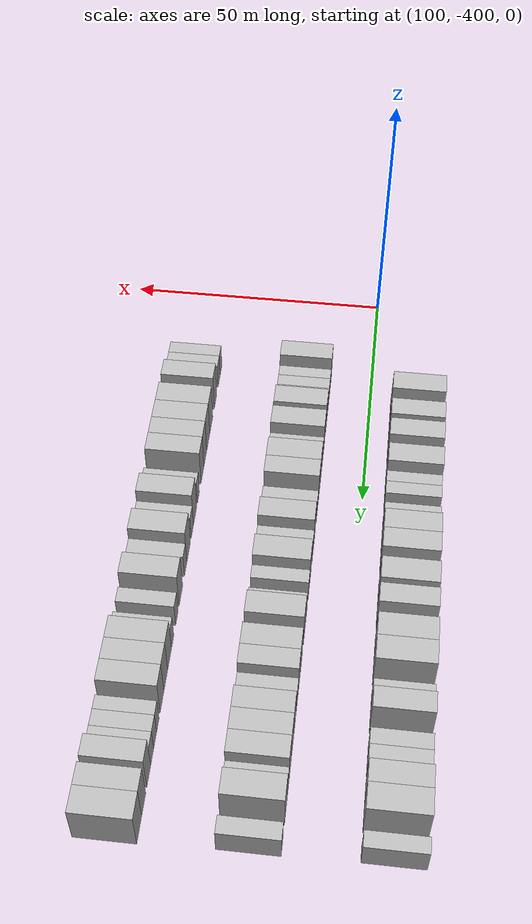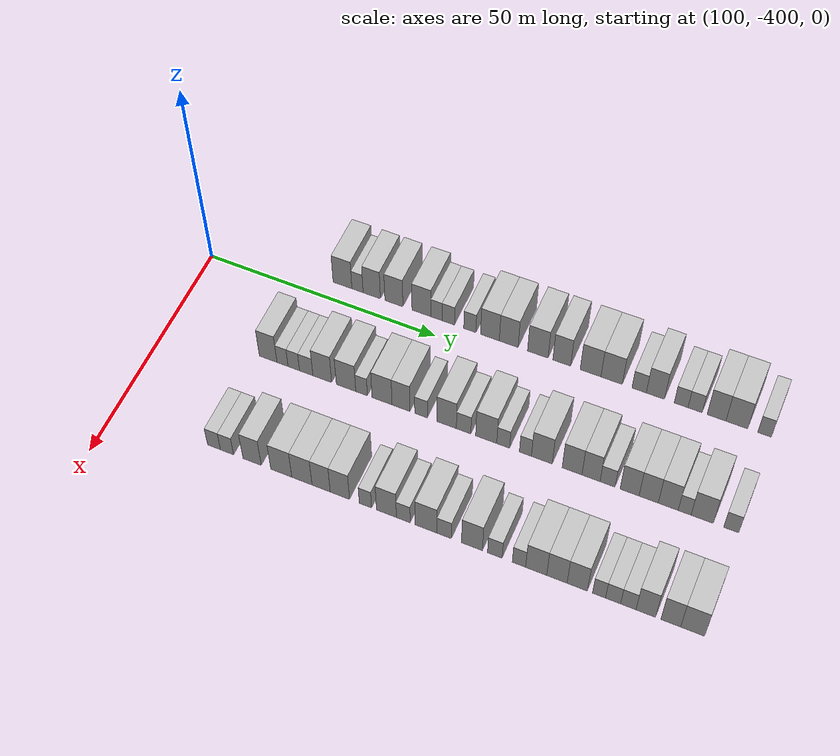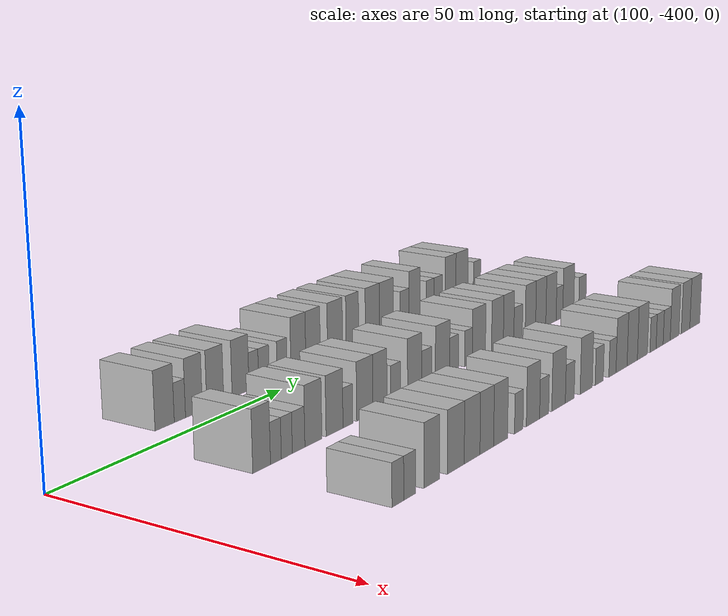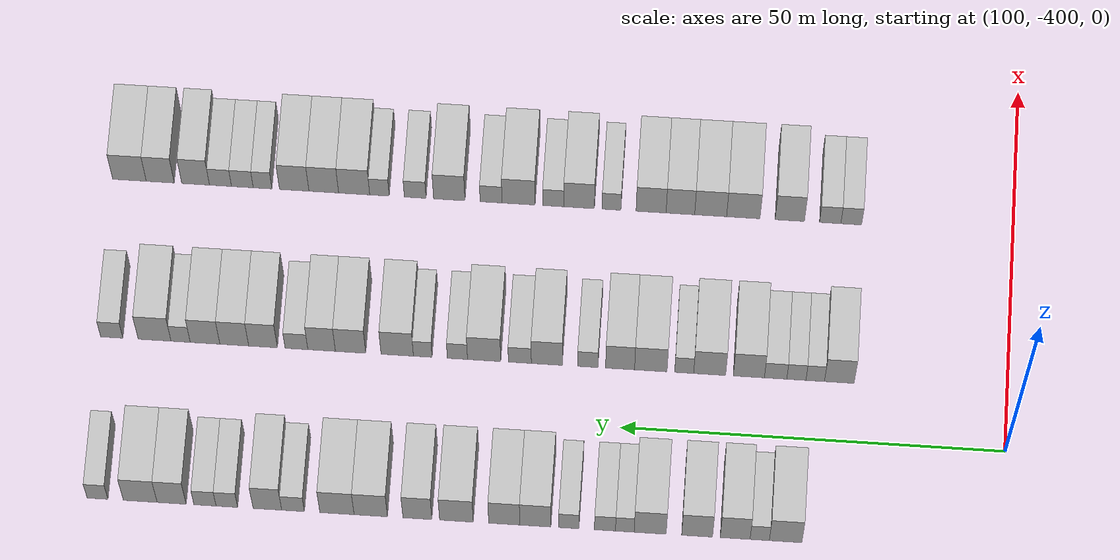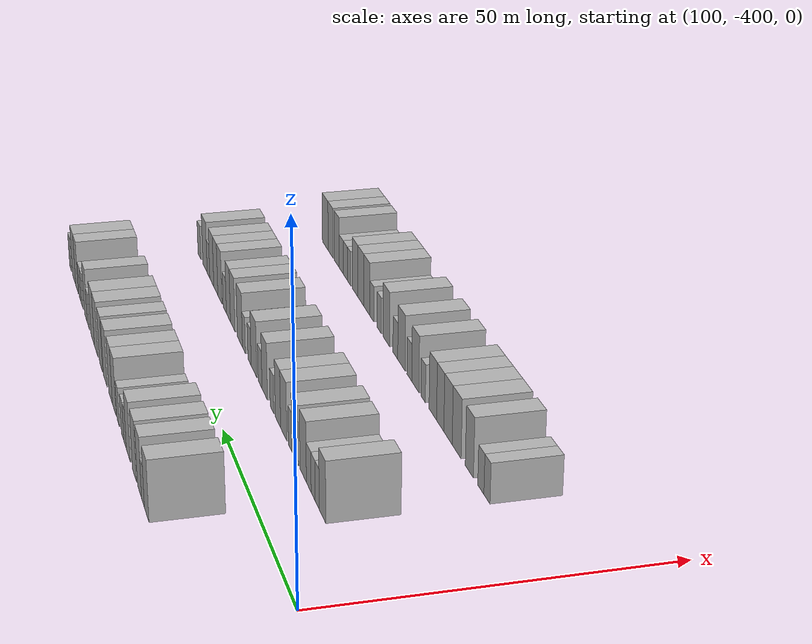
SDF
<sdf version="1.6">
 <world name="default">
  <model name="building_569">
   <static>1</static>
   <pose>91.0000 -372.1632 0 0.000000 0.000000 0.000000</pose>
   <link name="link">
    <pose>0 0 4.50 0 0 0</pose>
    <collision name="collision"><geometry><box><size>10.0000 4.1927 9.0000</size></box></geometry></collision>
    <visual name="visual">
     <cast_shadows>0</cast_shadows>
     <geometry><box><size>10.0000 4.1927 9.0000</size></box></geometry>
     <material>
      <script>
       <uri>model://HANNAS_wall/materials/scripts</uri>
       <uri>model://HANNAS_wall/materials/textures</uri>
       <name>vrc/HANNAS_wall</name>
      </script>
     </material>
    </visual>
   </link>
  </model>
  <model name="building_570">
   <static>1</static>
   <pose>91.0000 -368.8224 0 0.000000 0.000000 0.000000</pose>
   <link name="link">
    <pose>0 0 3.00 0 0 0</pose>
    <collision name="collision"><geometry><box><size>10.0000 2.4889 6.0000</size></box></geometry></collision>
    <visual name="visual">
     <cast_shadows>0</cast_shadows>
     <geometry><box><size>10.0000 2.4889 6.0000</size></box></geometry>
     <material>
      <script>
       <uri>model://HANNAS_wall/materials/scripts</uri>
       <uri>model://HANNAS_wall/materials/textures</uri>
       <name>vrc/HANNAS_wall</name>
      </script>
     </material>
    </visual>
   </link>
  </model>
  <model name="building_571">
   <static>1</static>
   <pose>91.0000 -365.6552 0 0.000000 0.000000 0.000000</pose>
   <link name="link">
    <pose>0 0 4.50 0 0 0</pose>
    <collision name="collision"><geometry><box><size>10.0000 3.8455 9.0000</size></box></geometry></collision>
    <visual name="visual">
     <cast_shadows>0</cast_shadows>
     <geometry><box><size>10.0000 3.8455 9.0000</size></box></geometry>
     <material>
      <script>
       <uri>model://HANNAS_wall/materials/scripts</uri>
       <uri>model://HANNAS_wall/materials/textures</uri>
       <name>vrc/HANNAS_wall</name>
      </script>
     </material>
    </visual>
   </link>
  </model>
  <model name="building_572">
   <static>1</static>
   <pose>91.0000 -360.7423 0 0.000000 0.000000 0.000000</pose>
   <link name="link">
    <pose>0 0 4.50 0 0 0</pose>
    <collision name="collision"><geometry><box><size>10.0000 3.9803 9.0000</size></box></geometry></collision>
    <visual name="visual">
     <cast_shadows>0</cast_shadows>
     <geometry><box><size>10.0000 3.9803 9.0000</size></box></geometry>
     <material>
      <script>
       <uri>model://HANNAS_wall/materials/scripts</uri>
       <uri>model://HANNAS_wall/materials/textures</uri>
       <name>vrc/HANNAS_wall</name>
      </script>
     </material>
    </visual>
   </link>
  </model>
  <model name="building_573">
   <static>1</static>
   <pose>91.0000 -354.6843 0 0.000000 0.000000 0.000000</pose>
   <link name="link">
    <pose>0 0 4.50 0 0 0</pose>
    <collision name="collision"><geometry><box><size>10.0000 4.1358 9.0000</size></box></geometry></collision>
    <visual name="visual">
     <cast_shadows>0</cast_shadows>
     <geometry><box><size>10.0000 4.1358 9.0000</size></box></geometry>
     <material>
      <script>
       <uri>model://HANNAS_wall/materials/scripts</uri>
       <uri>model://HANNAS_wall/materials/textures</uri>
       <name>vrc/HANNAS_wall</name>
      </script>
     </material>
    </visual>
   </link>
  </model>
  <model name="building_574">
   <static>1</static>
   <pose>91.0000 -351.4107 0 0.000000 0.000000 0.000000</pose>
   <link name="link">
    <pose>0 0 3.00 0 0 0</pose>
    <collision name="collision"><geometry><box><size>10.0000 2.4114 6.0000</size></box></geometry></collision>
    <visual name="visual">
     <cast_shadows>0</cast_shadows>
     <geometry><box><size>10.0000 2.4114 6.0000</size></box></geometry>
     <material>
      <script>
       <uri>model://HANNAS_wall/materials/scripts</uri>
       <uri>model://HANNAS_wall/materials/textures</uri>
       <name>vrc/HANNAS_wall</name>
      </script>
     </material>
    </visual>
   </link>
  </model>
  <model name="building_575">
   <static>1</static>
   <pose>91.0000 -348.8456 0 0.000000 0.000000 0.000000</pose>
   <link name="link">
    <pose>0 0 3.00 0 0 0</pose>
    <collision name="collision"><geometry><box><size>10.0000 2.7187 6.0000</size></box></geometry></collision>
    <visual name="visual">
     <cast_shadows>0</cast_shadows>
     <geometry><box><size>10.0000 2.7187 6.0000</size></box></geometry>
     <material>
      <script>
       <uri>model://HANNAS_wall/materials/scripts</uri>
       <uri>model://HANNAS_wall/materials/textures</uri>
       <name>vrc/HANNAS_wall</name>
      </script>
     </material>
    </visual>
   </link>
  </model>
  <model name="building_576">
   <static>1</static>
   <pose>91.0000 -344.1734 0 0.000000 0.000000 0.000000</pose>
   <link name="link">
    <pose>0 0 3.00 0 0 0</pose>
    <collision name="collision"><geometry><box><size>10.0000 2.6256 6.0000</size></box></geometry></collision>
    <visual name="visual">
     <cast_shadows>0</cast_shadows>
     <geometry><box><size>10.0000 2.6256 6.0000</size></box></geometry>
     <material>
      <script>
       <uri>model://HANNAS_wall/materials/scripts</uri>
       <uri>model://HANNAS_wall/materials/textures</uri>
       <name>vrc/HANNAS_wall</name>
      </script>
     </material>
    </visual>
   </link>
  </model>
  <model name="building_577">
   <static>1</static>
   <pose>91.0000 -339.8526 0 0.000000 0.000000 0.000000</pose>
   <link name="link">
    <pose>0 0 4.50 0 0 0</pose>
    <collision name="collision"><geometry><box><size>10.0000 4.0161 9.0000</size></box></geometry></collision>
    <visual name="visual">
     <cast_shadows>0</cast_shadows>
     <geometry><box><size>10.0000 4.0161 9.0000</size></box></geometry>
     <material>
      <script>
       <uri>model://HANNAS_wall/materials/scripts</uri>
       <uri>model://HANNAS_wall/materials/textures</uri>
       <name>vrc/HANNAS_wall</name>
      </script>
     </material>
    </visual>
   </link>
  </model>
  <model name="building_578">
   <static>1</static>
   <pose>91.0000 -335.8316 0 0.000000 0.000000 0.000000</pose>
   <link name="link">
    <pose>0 0 4.50 0 0 0</pose>
    <collision name="collision"><geometry><box><size>10.0000 4.0258 9.0000</size></box></geometry></collision>
    <visual name="visual">
     <cast_shadows>0</cast_shadows>
     <geometry><box><size>10.0000 4.0258 9.0000</size></box></geometry>
     <material>
      <script>
       <uri>model://HANNAS_wall/materials/scripts</uri>
       <uri>model://HANNAS_wall/materials/textures</uri>
       <name>vrc/HANNAS_wall</name>
      </script>
     </material>
    </visual>
   </link>
  </model>
  <model name="building_579">
   <static>1</static>
   <pose>91.0000 -329.6437 0 0.000000 0.000000 0.000000</pose>
   <link name="link">
    <pose>0 0 4.50 0 0 0</pose>
    <collision name="collision"><geometry><box><size>10.0000 4.3502 9.0000</size></box></geometry></collision>
    <visual name="visual">
     <cast_shadows>0</cast_shadows>
     <geometry><box><size>10.0000 4.3502 9.0000</size></box></geometry>
     <material>
      <script>
       <uri>model://HANNAS_wall/materials/scripts</uri>
       <uri>model://HANNAS_wall/materials/textures</uri>
       <name>vrc/HANNAS_wall</name>
      </script>
     </material>
    </visual>
   </link>
  </model>
  <model name="building_580">
   <static>1</static>
   <pose>91.0000 -324.5952 0 0.000000 0.000000 0.000000</pose>
   <link name="link">
    <pose>0 0 4.50 0 0 0</pose>
    <collision name="collision"><geometry><box><size>10.0000 3.7467 9.0000</size></box></geometry></collision>
    <visual name="visual">
     <cast_shadows>0</cast_shadows>
     <geometry><box><size>10.0000 3.7467 9.0000</size></box></geometry>
     <material>
      <script>
       <uri>model://HANNAS_wall/materials/scripts</uri>
       <uri>model://HANNAS_wall/materials/textures</uri>
       <name>vrc/HANNAS_wall</name>
      </script>
     </material>
    </visual>
   </link>
  </model>
  <model name="building_581">
   <static>1</static>
   <pose>91.0000 -318.5588 0 0.000000 0.000000 0.000000</pose>
   <link name="link">
    <pose>0 0 4.50 0 0 0</pose>
    <collision name="collision"><geometry><box><size>10.0000 4.3262 9.0000</size></box></geometry></collision>
    <visual name="visual">
     <cast_shadows>0</cast_shadows>
     <geometry><box><size>10.0000 4.3262 9.0000</size></box></geometry>
     <material>
      <script>
       <uri>model://HANNAS_wall/materials/scripts</uri>
       <uri>model://HANNAS_wall/materials/textures</uri>
       <name>vrc/HANNAS_wall</name>
      </script>
     </material>
    </visual>
   </link>
  </model>
  <model name="building_582">
   <static>1</static>
   <pose>91.0000 -314.1815 0 0.000000 0.000000 0.000000</pose>
   <link name="link">
    <pose>0 0 4.50 0 0 0</pose>
    <collision name="collision"><geometry><box><size>10.0000 4.4285 9.0000</size></box></geometry></collision>
    <visual name="visual">
     <cast_shadows>0</cast_shadows>
     <geometry><box><size>10.0000 4.4285 9.0000</size></box></geometry>
     <material>
      <script>
       <uri>model://HANNAS_wall/materials/scripts</uri>
       <uri>model://HANNAS_wall/materials/textures</uri>
       <name>vrc/HANNAS_wall</name>
      </script>
     </material>
    </visual>
   </link>
  </model>
  <model name="building_583">
   <static>1</static>
   <pose>91.0000 -308.4955 0 0.000000 0.000000 0.000000</pose>
   <link name="link">
    <pose>0 0 3.00 0 0 0</pose>
    <collision name="collision"><geometry><box><size>10.0000 2.9434 6.0000</size></box></geometry></collision>
    <visual name="visual">
     <cast_shadows>0</cast_shadows>
     <geometry><box><size>10.0000 2.9434 6.0000</size></box></geometry>
     <material>
      <script>
       <uri>model://HANNAS_wall/materials/scripts</uri>
       <uri>model://HANNAS_wall/materials/textures</uri>
       <name>vrc/HANNAS_wall</name>
      </script>
     </material>
    </visual>
   </link>
  </model>
  <model name="building_584">
   <static>1</static>
   <pose>91.0000 -305.1701 0 0.000000 0.000000 0.000000</pose>
   <link name="link">
    <pose>0 0 4.50 0 0 0</pose>
    <collision name="collision"><geometry><box><size>10.0000 3.7074 9.0000</size></box></geometry></collision>
    <visual name="visual">
     <cast_shadows>0</cast_shadows>
     <geometry><box><size>10.0000 3.7074 9.0000</size></box></geometry>
     <material>
      <script>
       <uri>model://HANNAS_wall/materials/scripts</uri>
       <uri>model://HANNAS_wall/materials/textures</uri>
       <name>vrc/HANNAS_wall</name>
      </script>
     </material>
    </visual>
   </link>
  </model>
  <model name="building_585">
   <static>1</static>
   <pose>91.0000 -299.9172 0 0.000000 0.000000 0.000000</pose>
   <link name="link">
    <pose>0 0 3.00 0 0 0</pose>
    <collision name="collision"><geometry><box><size>10.0000 2.7984 6.0000</size></box></geometry></collision>
    <visual name="visual">
     <cast_shadows>0</cast_shadows>
     <geometry><box><size>10.0000 2.7984 6.0000</size></box></geometry>
     <material>
      <script>
       <uri>model://HANNAS_wall/materials/scripts</uri>
       <uri>model://HANNAS_wall/materials/textures</uri>
       <name>vrc/HANNAS_wall</name>
      </script>
     </material>
    </visual>
   </link>
  </model>
  <model name="building_586">
   <static>1</static>
   <pose>91.0000 -297.0827 0 0.000000 0.000000 0.000000</pose>
   <link name="link">
    <pose>0 0 3.00 0 0 0</pose>
    <collision name="collision"><geometry><box><size>10.0000 2.8706 6.0000</size></box></geometry></collision>
    <visual name="visual">
     <cast_shadows>0</cast_shadows>
     <geometry><box><size>10.0000 2.8706 6.0000</size></box></geometry>
     <material>
      <script>
       <uri>model://HANNAS_wall/materials/scripts</uri>
       <uri>model://HANNAS_wall/materials/textures</uri>
       <name>vrc/HANNAS_wall</name>
      </script>
     </material>
    </visual>
   </link>
  </model>
  <model name="building_587">
   <static>1</static>
   <pose>91.0000 -292.7620 0 0.000000 0.000000 0.000000</pose>
   <link name="link">
    <pose>0 0 4.50 0 0 0</pose>
    <collision name="collision"><geometry><box><size>10.0000 3.7707 9.0000</size></box></geometry></collision>
    <visual name="visual">
     <cast_shadows>0</cast_shadows>
     <geometry><box><size>10.0000 3.7707 9.0000</size></box></geometry>
     <material>
      <script>
       <uri>model://HANNAS_wall/materials/scripts</uri>
       <uri>model://HANNAS_wall/materials/textures</uri>
       <name>vrc/HANNAS_wall</name>
      </script>
     </material>
    </visual>
   </link>
  </model>
  <model name="building_588">
   <static>1</static>
   <pose>91.0000 -288.6852 0 0.000000 0.000000 0.000000</pose>
   <link name="link">
    <pose>0 0 4.50 0 0 0</pose>
    <collision name="collision"><geometry><box><size>10.0000 4.3830 9.0000</size></box></geometry></collision>
    <visual name="visual">
     <cast_shadows>0</cast_shadows>
     <geometry><box><size>10.0000 4.3830 9.0000</size></box></geometry>
     <material>
      <script>
       <uri>model://HANNAS_wall/materials/scripts</uri>
       <uri>model://HANNAS_wall/materials/textures</uri>
       <name>vrc/HANNAS_wall</name>
      </script>
     </material>
    </visual>
   </link>
  </model>
  <model name="building_589">
   <static>1</static>
   <pose>91.0000 -283.1455 0 0.000000 0.000000 0.000000</pose>
   <link name="link">
    <pose>0 0 3.00 0 0 0</pose>
    <collision name="collision"><geometry><box><size>10.0000 2.6963 6.0000</size></box></geometry></collision>
    <visual name="visual">
     <cast_shadows>0</cast_shadows>
     <geometry><box><size>10.0000 2.6963 6.0000</size></box></geometry>
     <material>
      <script>
       <uri>model://HANNAS_wall/materials/scripts</uri>
       <uri>model://HANNAS_wall/materials/textures</uri>
       <name>vrc/HANNAS_wall</name>
      </script>
     </material>
    </visual>
   </link>
  </model>
  <model name="building_745">
   <static>1</static>
   <pose>113.0000 -378.0692 0 0.000000 0.000000 0.000000</pose>
   <link name="link">
    <pose>0 0 4.50 0 0 0</pose>
    <collision name="collision"><geometry><box><size>10.0000 3.8616 9.0000</size></box></geometry></collision>
    <visual name="visual">
     <cast_shadows>0</cast_shadows>
     <geometry><box><size>10.0000 3.8616 9.0000</size></box></geometry>
     <material>
      <script>
       <uri>model://HANNAS_wall/materials/scripts</uri>
       <uri>model://HANNAS_wall/materials/textures</uri>
       <name>vrc/HANNAS_wall</name>
      </script>
     </material>
    </visual>
   </link>
  </model>
  <model name="building_746">
   <static>1</static>
   <pose>113.0000 -374.9278 0 0.000000 0.000000 0.000000</pose>
   <link name="link">
    <pose>0 0 3.00 0 0 0</pose>
    <collision name="collision"><geometry><box><size>10.0000 2.4212 6.0000</size></box></geometry></collision>
    <visual name="visual">
     <cast_shadows>0</cast_shadows>
     <geometry><box><size>10.0000 2.4212 6.0000</size></box></geometry>
     <material>
      <script>
       <uri>model://HANNAS_wall/materials/scripts</uri>
       <uri>model://HANNAS_wall/materials/textures</uri>
       <name>vrc/HANNAS_wall</name>
      </script>
     </material>
    </visual>
   </link>
  </model>
  <model name="building_747">
   <static>1</static>
   <pose>113.0000 -372.4664 0 0.000000 0.000000 0.000000</pose>
   <link name="link">
    <pose>0 0 3.00 0 0 0</pose>
    <collision name="collision"><geometry><box><size>10.0000 2.5017 6.0000</size></box></geometry></collision>
    <visual name="visual">
     <cast_shadows>0</cast_shadows>
     <geometry><box><size>10.0000 2.5017 6.0000</size></box></geometry>
     <material>
      <script>
       <uri>model://HANNAS_wall/materials/scripts</uri>
       <uri>model://HANNAS_wall/materials/textures</uri>
       <name>vrc/HANNAS_wall</name>
      </script>
     </material>
    </visual>
   </link>
  </model>
  <model name="building_748">
   <static>1</static>
   <pose>113.0000 -369.7588 0 0.000000 0.000000 0.000000</pose>
   <link name="link">
    <pose>0 0 3.00 0 0 0</pose>
    <collision name="collision"><geometry><box><size>10.0000 2.9134 6.0000</size></box></geometry></collision>
    <visual name="visual">
     <cast_shadows>0</cast_shadows>
     <geometry><box><size>10.0000 2.9134 6.0000</size></box></geometry>
     <material>
      <script>
       <uri>model://HANNAS_wall/materials/scripts</uri>
       <uri>model://HANNAS_wall/materials/textures</uri>
       <name>vrc/HANNAS_wall</name>
      </script>
     </material>
    </visual>
   </link>
  </model>
  <model name="building_749">
   <static>1</static>
   <pose>113.0000 -366.2726 0 0.000000 0.000000 0.000000</pose>
   <link name="link">
    <pose>0 0 4.50 0 0 0</pose>
    <collision name="collision"><geometry><box><size>10.0000 4.0589 9.0000</size></box></geometry></collision>
    <visual name="visual">
     <cast_shadows>0</cast_shadows>
     <geometry><box><size>10.0000 4.0589 9.0000</size></box></geometry>
     <material>
      <script>
       <uri>model://HANNAS_wall/materials/scripts</uri>
       <uri>model://HANNAS_wall/materials/textures</uri>
       <name>vrc/HANNAS_wall</name>
      </script>
     </material>
    </visual>
   </link>
  </model>
  <model name="building_750">
   <static>1</static>
   <pose>113.0000 -361.1542 0 0.000000 0.000000 0.000000</pose>
   <link name="link">
    <pose>0 0 4.50 0 0 0</pose>
    <collision name="collision"><geometry><box><size>10.0000 4.1779 9.0000</size></box></geometry></collision>
    <visual name="visual">
     <cast_shadows>0</cast_shadows>
     <geometry><box><size>10.0000 4.1779 9.0000</size></box></geometry>
     <material>
      <script>
       <uri>model://HANNAS_wall/materials/scripts</uri>
       <uri>model://HANNAS_wall/materials/textures</uri>
       <name>vrc/HANNAS_wall</name>
      </script>
     </material>
    </visual>
   </link>
  </model>
  <model name="building_751">
   <static>1</static>
   <pose>113.0000 -357.8273 0 0.000000 0.000000 0.000000</pose>
   <link name="link">
    <pose>0 0 3.00 0 0 0</pose>
    <collision name="collision"><geometry><box><size>10.0000 2.4758 6.0000</size></box></geometry></collision>
    <visual name="visual">
     <cast_shadows>0</cast_shadows>
     <geometry><box><size>10.0000 2.4758 6.0000</size></box></geometry>
     <material>
      <script>
       <uri>model://HANNAS_wall/materials/scripts</uri>
       <uri>model://HANNAS_wall/materials/textures</uri>
       <name>vrc/HANNAS_wall</name>
      </script>
     </material>
    </visual>
   </link>
  </model>
  <model name="building_752">
   <static>1</static>
   <pose>113.0000 -353.4699 0 0.000000 0.000000 0.000000</pose>
   <link name="link">
    <pose>0 0 4.50 0 0 0</pose>
    <collision name="collision"><geometry><box><size>10.0000 4.2390 9.0000</size></box></geometry></collision>
    <visual name="visual">
     <cast_shadows>0</cast_shadows>
     <geometry><box><size>10.0000 4.2390 9.0000</size></box></geometry>
     <material>
      <script>
       <uri>model://HANNAS_wall/materials/scripts</uri>
       <uri>model://HANNAS_wall/materials/textures</uri>
       <name>vrc/HANNAS_wall</name>
      </script>
     </material>
    </visual>
   </link>
  </model>
  <model name="building_753">
   <static>1</static>
   <pose>113.0000 -349.4564 0 0.000000 0.000000 0.000000</pose>
   <link name="link">
    <pose>0 0 4.50 0 0 0</pose>
    <collision name="collision"><geometry><box><size>10.0000 3.7881 9.0000</size></box></geometry></collision>
    <visual name="visual">
     <cast_shadows>0</cast_shadows>
     <geometry><box><size>10.0000 3.7881 9.0000</size></box></geometry>
     <material>
      <script>
       <uri>model://HANNAS_wall/materials/scripts</uri>
       <uri>model://HANNAS_wall/materials/textures</uri>
       <name>vrc/HANNAS_wall</name>
      </script>
     </material>
    </visual>
   </link>
  </model>
  <model name="building_754">
   <static>1</static>
   <pose>113.0000 -345.2304 0 0.000000 0.000000 0.000000</pose>
   <link name="link">
    <pose>0 0 3.00 0 0 0</pose>
    <collision name="collision"><geometry><box><size>10.0000 2.6640 6.0000</size></box></geometry></collision>
    <visual name="visual">
     <cast_shadows>0</cast_shadows>
     <geometry><box><size>10.0000 2.6640 6.0000</size></box></geometry>
     <material>
      <script>
       <uri>model://HANNAS_wall/materials/scripts</uri>
       <uri>model://HANNAS_wall/materials/textures</uri>
       <name>vrc/HANNAS_wall</name>
      </script>
     </material>
    </visual>
   </link>
  </model>
  <model name="building_755">
   <static>1</static>
   <pose>113.0000 -339.8753 0 0.000000 0.000000 0.000000</pose>
   <link name="link">
    <pose>0 0 4.50 0 0 0</pose>
    <collision name="collision"><geometry><box><size>10.0000 4.0461 9.0000</size></box></geometry></collision>
    <visual name="visual">
     <cast_shadows>0</cast_shadows>
     <geometry><box><size>10.0000 4.0461 9.0000</size></box></geometry>
     <material>
      <script>
       <uri>model://HANNAS_wall/materials/scripts</uri>
       <uri>model://HANNAS_wall/materials/textures</uri>
       <name>vrc/HANNAS_wall</name>
      </script>
     </material>
    </visual>
   </link>
  </model>
  <model name="building_756">
   <static>1</static>
   <pose>113.0000 -336.3530 0 0.000000 0.000000 0.000000</pose>
   <link name="link">
    <pose>0 0 3.00 0 0 0</pose>
    <collision name="collision"><geometry><box><size>10.0000 2.9985 6.0000</size></box></geometry></collision>
    <visual name="visual">
     <cast_shadows>0</cast_shadows>
     <geometry><box><size>10.0000 2.9985 6.0000</size></box></geometry>
     <material>
      <script>
       <uri>model://HANNAS_wall/materials/scripts</uri>
       <uri>model://HANNAS_wall/materials/textures</uri>
       <name>vrc/HANNAS_wall</name>
      </script>
     </material>
    </visual>
   </link>
  </model>
  <model name="building_757">
   <static>1</static>
   <pose>113.0000 -331.6783 0 0.000000 0.000000 0.000000</pose>
   <link name="link">
    <pose>0 0 4.50 0 0 0</pose>
    <collision name="collision"><geometry><box><size>10.0000 4.3508 9.0000</size></box></geometry></collision>
    <visual name="visual">
     <cast_shadows>0</cast_shadows>
     <geometry><box><size>10.0000 4.3508 9.0000</size></box></geometry>
     <material>
      <script>
       <uri>model://HANNAS_wall/materials/scripts</uri>
       <uri>model://HANNAS_wall/materials/textures</uri>
       <name>vrc/HANNAS_wall</name>
      </script>
     </material>
    </visual>
   </link>
  </model>
  <model name="building_758">
   <static>1</static>
   <pose>113.0000 -328.1858 0 0.000000 0.000000 0.000000</pose>
   <link name="link">
    <pose>0 0 3.00 0 0 0</pose>
    <collision name="collision"><geometry><box><size>10.0000 2.6343 6.0000</size></box></geometry></collision>
    <visual name="visual">
     <cast_shadows>0</cast_shadows>
     <geometry><box><size>10.0000 2.6343 6.0000</size></box></geometry>
     <material>
      <script>
       <uri>model://HANNAS_wall/materials/scripts</uri>
       <uri>model://HANNAS_wall/materials/textures</uri>
       <name>vrc/HANNAS_wall</name>
      </script>
     </material>
    </visual>
   </link>
  </model>
  <model name="building_759">
   <static>1</static>
   <pose>113.0000 -323.6489 0 0.000000 0.000000 0.000000</pose>
   <link name="link">
    <pose>0 0 3.00 0 0 0</pose>
    <collision name="collision"><geometry><box><size>10.0000 2.4395 6.0000</size></box></geometry></collision>
    <visual name="visual">
     <cast_shadows>0</cast_shadows>
     <geometry><box><size>10.0000 2.4395 6.0000</size></box></geometry>
     <material>
      <script>
       <uri>model://HANNAS_wall/materials/scripts</uri>
       <uri>model://HANNAS_wall/materials/textures</uri>
       <name>vrc/HANNAS_wall</name>
      </script>
     </material>
    </visual>
   </link>
  </model>
  <model name="building_760">
   <static>1</static>
   <pose>113.0000 -320.3113 0 0.000000 0.000000 0.000000</pose>
   <link name="link">
    <pose>0 0 4.50 0 0 0</pose>
    <collision name="collision"><geometry><box><size>10.0000 4.2358 9.0000</size></box></geometry></collision>
    <visual name="visual">
     <cast_shadows>0</cast_shadows>
     <geometry><box><size>10.0000 4.2358 9.0000</size></box></geometry>
     <material>
      <script>
       <uri>model://HANNAS_wall/materials/scripts</uri>
       <uri>model://HANNAS_wall/materials/textures</uri>
       <name>vrc/HANNAS_wall</name>
      </script>
     </material>
    </visual>
   </link>
  </model>
  <model name="building_761">
   <static>1</static>
   <pose>113.0000 -314.2027 0 0.000000 0.000000 0.000000</pose>
   <link name="link">
    <pose>0 0 4.50 0 0 0</pose>
    <collision name="collision"><geometry><box><size>10.0000 3.9813 9.0000</size></box></geometry></collision>
    <visual name="visual">
     <cast_shadows>0</cast_shadows>
     <geometry><box><size>10.0000 3.9813 9.0000</size></box></geometry>
     <material>
      <script>
       <uri>model://HANNAS_wall/materials/scripts</uri>
       <uri>model://HANNAS_wall/materials/textures</uri>
       <name>vrc/HANNAS_wall</name>
      </script>
     </material>
    </visual>
   </link>
  </model>
  <model name="building_762">
   <static>1</static>
   <pose>113.0000 -310.4067 0 0.000000 0.000000 0.000000</pose>
   <link name="link">
    <pose>0 0 4.50 0 0 0</pose>
    <collision name="collision"><geometry><box><size>10.0000 3.6108 9.0000</size></box></geometry></collision>
    <visual name="visual">
     <cast_shadows>0</cast_shadows>
     <geometry><box><size>10.0000 3.6108 9.0000</size></box></geometry>
     <material>
      <script>
       <uri>model://HANNAS_wall/materials/scripts</uri>
       <uri>model://HANNAS_wall/materials/textures</uri>
       <name>vrc/HANNAS_wall</name>
      </script>
     </material>
    </visual>
   </link>
  </model>
  <model name="building_763">
   <static>1</static>
   <pose>113.0000 -307.1083 0 0.000000 0.000000 0.000000</pose>
   <link name="link">
    <pose>0 0 3.00 0 0 0</pose>
    <collision name="collision"><geometry><box><size>10.0000 2.9860 6.0000</size></box></geometry></collision>
    <visual name="visual">
     <cast_shadows>0</cast_shadows>
     <geometry><box><size>10.0000 2.9860 6.0000</size></box></geometry>
     <material>
      <script>
       <uri>model://HANNAS_wall/materials/scripts</uri>
       <uri>model://HANNAS_wall/materials/textures</uri>
       <name>vrc/HANNAS_wall</name>
      </script>
     </material>
    </visual>
   </link>
  </model>
  <model name="building_764">
   <static>1</static>
   <pose>113.0000 -302.7312 0 0.000000 0.000000 0.000000</pose>
   <link name="link">
    <pose>0 0 4.50 0 0 0</pose>
    <collision name="collision"><geometry><box><size>10.0000 3.7682 9.0000</size></box></geometry></collision>
    <visual name="visual">
     <cast_shadows>0</cast_shadows>
     <geometry><box><size>10.0000 3.7682 9.0000</size></box></geometry>
     <material>
      <script>
       <uri>model://HANNAS_wall/materials/scripts</uri>
       <uri>model://HANNAS_wall/materials/textures</uri>
       <name>vrc/HANNAS_wall</name>
      </script>
     </material>
    </visual>
   </link>
  </model>
  <model name="building_765">
   <static>1</static>
   <pose>113.0000 -298.9567 0 0.000000 0.000000 0.000000</pose>
   <link name="link">
    <pose>0 0 4.50 0 0 0</pose>
    <collision name="collision"><geometry><box><size>10.0000 3.7808 9.0000</size></box></geometry></collision>
    <visual name="visual">
     <cast_shadows>0</cast_shadows>
     <geometry><box><size>10.0000 3.7808 9.0000</size></box></geometry>
     <material>
      <script>
       <uri>model://HANNAS_wall/materials/scripts</uri>
       <uri>model://HANNAS_wall/materials/textures</uri>
       <name>vrc/HANNAS_wall</name>
      </script>
     </material>
    </visual>
   </link>
  </model>
  <model name="building_766">
   <static>1</static>
   <pose>113.0000 -295.1218 0 0.000000 0.000000 0.000000</pose>
   <link name="link">
    <pose>0 0 4.50 0 0 0</pose>
    <collision name="collision"><geometry><box><size>10.0000 3.8890 9.0000</size></box></geometry></collision>
    <visual name="visual">
     <cast_shadows>0</cast_shadows>
     <geometry><box><size>10.0000 3.8890 9.0000</size></box></geometry>
     <material>
      <script>
       <uri>model://HANNAS_wall/materials/scripts</uri>
       <uri>model://HANNAS_wall/materials/textures</uri>
       <name>vrc/HANNAS_wall</name>
      </script>
     </material>
    </visual>
   </link>
  </model>
  <model name="building_767">
   <static>1</static>
   <pose>113.0000 -291.9179 0 0.000000 0.000000 0.000000</pose>
   <link name="link">
    <pose>0 0 3.00 0 0 0</pose>
    <collision name="collision"><geometry><box><size>10.0000 2.5187 6.0000</size></box></geometry></collision>
    <visual name="visual">
     <cast_shadows>0</cast_shadows>
     <geometry><box><size>10.0000 2.5187 6.0000</size></box></geometry>
     <material>
      <script>
       <uri>model://HANNAS_wall/materials/scripts</uri>
       <uri>model://HANNAS_wall/materials/textures</uri>
       <name>vrc/HANNAS_wall</name>
      </script>
     </material>
    </visual>
   </link>
  </model>
  <model name="building_768">
   <static>1</static>
   <pose>113.0000 -288.5023 0 0.000000 0.000000 0.000000</pose>
   <link name="link">
    <pose>0 0 4.50 0 0 0</pose>
    <collision name="collision"><geometry><box><size>10.0000 4.3125 9.0000</size></box></geometry></collision>
    <visual name="visual">
     <cast_shadows>0</cast_shadows>
     <geometry><box><size>10.0000 4.3125 9.0000</size></box></geometry>
     <material>
      <script>
       <uri>model://HANNAS_wall/materials/scripts</uri>
       <uri>model://HANNAS_wall/materials/textures</uri>
       <name>vrc/HANNAS_wall</name>
      </script>
     </material>
    </visual>
   </link>
  </model>
  <model name="building_769">
   <static>1</static>
   <pose>113.0000 -282.8892 0 0.000000 0.000000 0.000000</pose>
   <link name="link">
    <pose>0 0 3.00 0 0 0</pose>
    <collision name="collision"><geometry><box><size>10.0000 2.9136 6.0000</size></box></geometry></collision>
    <visual name="visual">
     <cast_shadows>0</cast_shadows>
     <geometry><box><size>10.0000 2.9136 6.0000</size></box></geometry>
     <material>
      <script>
       <uri>model://HANNAS_wall/materials/scripts</uri>
       <uri>model://HANNAS_wall/materials/textures</uri>
       <name>vrc/HANNAS_wall</name>
      </script>
     </material>
    </visual>
   </link>
  </model>
  <model name="building_934">
   <static>1</static>
   <pose>135.0000 -378.6287 0 0.000000 0.000000 0.000000</pose>
   <link name="link">
    <pose>0 0 3.00 0 0 0</pose>
    <collision name="collision"><geometry><box><size>10.0000 2.7425 6.0000</size></box></geometry></collision>
    <visual name="visual">
     <cast_shadows>0</cast_shadows>
     <geometry><box><size>10.0000 2.7425 6.0000</size></box></geometry>
     <material>
      <script>
       <uri>model://HANNAS_wall/materials/scripts</uri>
       <uri>model://HANNAS_wall/materials/textures</uri>
       <name>vrc/HANNAS_wall</name>
      </script>
     </material>
    </visual>
   </link>
  </model>
  <model name="building_935">
   <static>1</static>
   <pose>135.0000 -375.8544 0 0.000000 0.000000 0.000000</pose>
   <link name="link">
    <pose>0 0 3.00 0 0 0</pose>
    <collision name="collision"><geometry><box><size>10.0000 2.8062 6.0000</size></box></geometry></collision>
    <visual name="visual">
     <cast_shadows>0</cast_shadows>
     <geometry><box><size>10.0000 2.8062 6.0000</size></box></geometry>
     <material>
      <script>
       <uri>model://HANNAS_wall/materials/scripts</uri>
       <uri>model://HANNAS_wall/materials/textures</uri>
       <name>vrc/HANNAS_wall</name>
      </script>
     </material>
    </visual>
   </link>
  </model>
  <model name="building_936">
   <static>1</static>
   <pose>135.0000 -370.5197 0 0.000000 0.000000 0.000000</pose>
   <link name="link">
    <pose>0 0 4.50 0 0 0</pose>
    <collision name="collision"><geometry><box><size>10.0000 3.8631 9.0000</size></box></geometry></collision>
    <visual name="visual">
     <cast_shadows>0</cast_shadows>
     <geometry><box><size>10.0000 3.8631 9.0000</size></box></geometry>
     <material>
      <script>
       <uri>model://HANNAS_wall/materials/scripts</uri>
       <uri>model://HANNAS_wall/materials/textures</uri>
       <name>vrc/HANNAS_wall</name>
      </script>
     </material>
    </visual>
   </link>
  </model>
  <model name="building_937">
   <static>1</static>
   <pose>135.0000 -364.3855 0 0.000000 0.000000 0.000000</pose>
   <link name="link">
    <pose>0 0 4.50 0 0 0</pose>
    <collision name="collision"><geometry><box><size>10.0000 4.4053 9.0000</size></box></geometry></collision>
    <visual name="visual">
     <cast_shadows>0</cast_shadows>
     <geometry><box><size>10.0000 4.4053 9.0000</size></box></geometry>
     <material>
      <script>
       <uri>model://HANNAS_wall/materials/scripts</uri>
       <uri>model://HANNAS_wall/materials/textures</uri>
       <name>vrc/HANNAS_wall</name>
      </script>
     </material>
    </visual>
   </link>
  </model>
  <model name="building_938">
   <static>1</static>
   <pose>135.0000 -360.0744 0 0.000000 0.000000 0.000000</pose>
   <link name="link">
    <pose>0 0 4.50 0 0 0</pose>
    <collision name="collision"><geometry><box><size>10.0000 4.2169 9.0000</size></box></geometry></collision>
    <visual name="visual">
     <cast_shadows>0</cast_shadows>
     <geometry><box><size>10.0000 4.2169 9.0000</size></box></geometry>
     <material>
      <script>
       <uri>model://HANNAS_wall/materials/scripts</uri>
       <uri>model://HANNAS_wall/materials/textures</uri>
       <name>vrc/HANNAS_wall</name>
      </script>
     </material>
    </visual>
   </link>
  </model>
  <model name="building_939">
   <static>1</static>
   <pose>135.0000 -356.0784 0 0.000000 0.000000 0.000000</pose>
   <link name="link">
    <pose>0 0 4.50 0 0 0</pose>
    <collision name="collision"><geometry><box><size>10.0000 3.7751 9.0000</size></box></geometry></collision>
    <visual name="visual">
     <cast_shadows>0</cast_shadows>
     <geometry><box><size>10.0000 3.7751 9.0000</size></box></geometry>
     <material>
      <script>
       <uri>model://HANNAS_wall/materials/scripts</uri>
       <uri>model://HANNAS_wall/materials/textures</uri>
       <name>vrc/HANNAS_wall</name>
      </script>
     </material>
    </visual>
   </link>
  </model>
  <model name="building_940">
   <static>1</static>
   <pose>135.0000 -352.2083 0 0.000000 0.000000 0.000000</pose>
   <link name="link">
    <pose>0 0 4.50 0 0 0</pose>
    <collision name="collision"><geometry><box><size>10.0000 3.9653 9.0000</size></box></geometry></collision>
    <visual name="visual">
     <cast_shadows>0</cast_shadows>
     <geometry><box><size>10.0000 3.9653 9.0000</size></box></geometry>
     <material>
      <script>
       <uri>model://HANNAS_wall/materials/scripts</uri>
       <uri>model://HANNAS_wall/materials/textures</uri>
       <name>vrc/HANNAS_wall</name>
      </script>
     </material>
    </visual>
   </link>
  </model>
  <model name="building_941">
   <static>1</static>
   <pose>135.0000 -346.9738 0 0.000000 0.000000 0.000000</pose>
   <link name="link">
    <pose>0 0 3.00 0 0 0</pose>
    <collision name="collision"><geometry><box><size>10.0000 2.5037 6.0000</size></box></geometry></collision>
    <visual name="visual">
     <cast_shadows>0</cast_shadows>
     <geometry><box><size>10.0000 2.5037 6.0000</size></box></geometry>
     <material>
      <script>
       <uri>model://HANNAS_wall/materials/scripts</uri>
       <uri>model://HANNAS_wall/materials/textures</uri>
       <name>vrc/HANNAS_wall</name>
      </script>
     </material>
    </visual>
   </link>
  </model>
  <model name="building_942">
   <static>1</static>
   <pose>135.0000 -342.6984 0 0.000000 0.000000 0.000000</pose>
   <link name="link">
    <pose>0 0 4.50 0 0 0</pose>
    <collision name="collision"><geometry><box><size>10.0000 4.0471 9.0000</size></box></geometry></collision>
    <visual name="visual">
     <cast_shadows>0</cast_shadows>
     <geometry><box><size>10.0000 4.0471 9.0000</size></box></geometry>
     <material>
      <script>
       <uri>model://HANNAS_wall/materials/scripts</uri>
       <uri>model://HANNAS_wall/materials/textures</uri>
       <name>vrc/HANNAS_wall</name>
      </script>
     </material>
    </visual>
   </link>
  </model>
  <model name="building_943">
   <static>1</static>
   <pose>135.0000 -339.2745 0 0.000000 0.000000 0.000000</pose>
   <link name="link">
    <pose>0 0 3.00 0 0 0</pose>
    <collision name="collision"><geometry><box><size>10.0000 2.8005 6.0000</size></box></geometry></collision>
    <visual name="visual">
     <cast_shadows>0</cast_shadows>
     <geometry><box><size>10.0000 2.8005 6.0000</size></box></geometry>
     <material>
      <script>
       <uri>model://HANNAS_wall/materials/scripts</uri>
       <uri>model://HANNAS_wall/materials/textures</uri>
       <name>vrc/HANNAS_wall</name>
      </script>
     </material>
    </visual>
   </link>
  </model>
  <model name="building_944">
   <static>1</static>
   <pose>135.0000 -334.6899 0 0.000000 0.000000 0.000000</pose>
   <link name="link">
    <pose>0 0 4.50 0 0 0</pose>
    <collision name="collision"><geometry><box><size>10.0000 4.3688 9.0000</size></box></geometry></collision>
    <visual name="visual">
     <cast_shadows>0</cast_shadows>
     <geometry><box><size>10.0000 4.3688 9.0000</size></box></geometry>
     <material>
      <script>
       <uri>model://HANNAS_wall/materials/scripts</uri>
       <uri>model://HANNAS_wall/materials/textures</uri>
       <name>vrc/HANNAS_wall</name>
      </script>
     </material>
    </visual>
   </link>
  </model>
  <model name="building_945">
   <static>1</static>
   <pose>135.0000 -331.0530 0 0.000000 0.000000 0.000000</pose>
   <link name="link">
    <pose>0 0 3.00 0 0 0</pose>
    <collision name="collision"><geometry><box><size>10.0000 2.9050 6.0000</size></box></geometry></collision>
    <visual name="visual">
     <cast_shadows>0</cast_shadows>
     <geometry><box><size>10.0000 2.9050 6.0000</size></box></geometry>
     <material>
      <script>
       <uri>model://HANNAS_wall/materials/scripts</uri>
       <uri>model://HANNAS_wall/materials/textures</uri>
       <name>vrc/HANNAS_wall</name>
      </script>
     </material>
    </visual>
   </link>
  </model>
  <model name="building_946">
   <static>1</static>
   <pose>135.0000 -325.5238 0 0.000000 0.000000 0.000000</pose>
   <link name="link">
    <pose>0 0 4.50 0 0 0</pose>
    <collision name="collision"><geometry><box><size>10.0000 4.1533 9.0000</size></box></geometry></collision>
    <visual name="visual">
     <cast_shadows>0</cast_shadows>
     <geometry><box><size>10.0000 4.1533 9.0000</size></box></geometry>
     <material>
      <script>
       <uri>model://HANNAS_wall/materials/scripts</uri>
       <uri>model://HANNAS_wall/materials/textures</uri>
       <name>vrc/HANNAS_wall</name>
      </script>
     </material>
    </visual>
   </link>
  </model>
  <model name="building_947">
   <static>1</static>
   <pose>135.0000 -321.0110 0 0.000000 0.000000 0.000000</pose>
   <link name="link">
    <pose>0 0 3.00 0 0 0</pose>
    <collision name="collision"><geometry><box><size>10.0000 2.8724 6.0000</size></box></geometry></collision>
    <visual name="visual">
     <cast_shadows>0</cast_shadows>
     <geometry><box><size>10.0000 2.8724 6.0000</size></box></geometry>
     <material>
      <script>
       <uri>model://HANNAS_wall/materials/scripts</uri>
       <uri>model://HANNAS_wall/materials/textures</uri>
       <name>vrc/HANNAS_wall</name>
      </script>
     </material>
    </visual>
   </link>
  </model>
  <model name="building_948">
   <static>1</static>
   <pose>135.0000 -316.2813 0 0.000000 0.000000 0.000000</pose>
   <link name="link">
    <pose>0 0 3.00 0 0 0</pose>
    <collision name="collision"><geometry><box><size>10.0000 2.5869 6.0000</size></box></geometry></collision>
    <visual name="visual">
     <cast_shadows>0</cast_shadows>
     <geometry><box><size>10.0000 2.5869 6.0000</size></box></geometry>
     <material>
      <script>
       <uri>model://HANNAS_wall/materials/scripts</uri>
       <uri>model://HANNAS_wall/materials/textures</uri>
       <name>vrc/HANNAS_wall</name>
      </script>
     </material>
    </visual>
   </link>
  </model>
  <model name="building_949">
   <static>1</static>
   <pose>135.0000 -312.9295 0 0.000000 0.000000 0.000000</pose>
   <link name="link">
    <pose>0 0 4.50 0 0 0</pose>
    <collision name="collision"><geometry><box><size>10.0000 4.1168 9.0000</size></box></geometry></collision>
    <visual name="visual">
     <cast_shadows>0</cast_shadows>
     <geometry><box><size>10.0000 4.1168 9.0000</size></box></geometry>
     <material>
      <script>
       <uri>model://HANNAS_wall/materials/scripts</uri>
       <uri>model://HANNAS_wall/materials/textures</uri>
       <name>vrc/HANNAS_wall</name>
      </script>
     </material>
    </visual>
   </link>
  </model>
  <model name="building_950">
   <static>1</static>
   <pose>135.0000 -308.9032 0 0.000000 0.000000 0.000000</pose>
   <link name="link">
    <pose>0 0 4.50 0 0 0</pose>
    <collision name="collision"><geometry><box><size>10.0000 3.9358 9.0000</size></box></geometry></collision>
    <visual name="visual">
     <cast_shadows>0</cast_shadows>
     <geometry><box><size>10.0000 3.9358 9.0000</size></box></geometry>
     <material>
      <script>
       <uri>model://HANNAS_wall/materials/scripts</uri>
       <uri>model://HANNAS_wall/materials/textures</uri>
       <name>vrc/HANNAS_wall</name>
      </script>
     </material>
    </visual>
   </link>
  </model>
  <model name="building_951">
   <static>1</static>
   <pose>135.0000 -304.9855 0 0.000000 0.000000 0.000000</pose>
   <link name="link">
    <pose>0 0 4.50 0 0 0</pose>
    <collision name="collision"><geometry><box><size>10.0000 3.8997 9.0000</size></box></geometry></collision>
    <visual name="visual">
     <cast_shadows>0</cast_shadows>
     <geometry><box><size>10.0000 3.8997 9.0000</size></box></geometry>
     <material>
      <script>
       <uri>model://HANNAS_wall/materials/scripts</uri>
       <uri>model://HANNAS_wall/materials/textures</uri>
       <name>vrc/HANNAS_wall</name>
      </script>
     </material>
    </visual>
   </link>
  </model>
  <model name="building_952">
   <static>1</static>
   <pose>135.0000 -300.7966 0 0.000000 0.000000 0.000000</pose>
   <link name="link">
    <pose>0 0 3.00 0 0 0</pose>
    <collision name="collision"><geometry><box><size>10.0000 2.4780 6.0000</size></box></geometry></collision>
    <visual name="visual">
     <cast_shadows>0</cast_shadows>
     <geometry><box><size>10.0000 2.4780 6.0000</size></box></geometry>
     <material>
      <script>
       <uri>model://HANNAS_wall/materials/scripts</uri>
       <uri>model://HANNAS_wall/materials/textures</uri>
       <name>vrc/HANNAS_wall</name>
      </script>
     </material>
    </visual>
   </link>
  </model>
  <model name="building_953">
   <static>1</static>
   <pose>135.0000 -298.1151 0 0.000000 0.000000 0.000000</pose>
   <link name="link">
    <pose>0 0 3.00 0 0 0</pose>
    <collision name="collision"><geometry><box><size>10.0000 2.8850 6.0000</size></box></geometry></collision>
    <visual name="visual">
     <cast_shadows>0</cast_shadows>
     <geometry><box><size>10.0000 2.8850 6.0000</size></box></geometry>
     <material>
      <script>
       <uri>model://HANNAS_wall/materials/scripts</uri>
       <uri>model://HANNAS_wall/materials/textures</uri>
       <name>vrc/HANNAS_wall</name>
      </script>
     </material>
    </visual>
   </link>
  </model>
  <model name="building_954">
   <static>1</static>
   <pose>135.0000 -295.2118 0 0.000000 0.000000 0.000000</pose>
   <link name="link">
    <pose>0 0 3.00 0 0 0</pose>
    <collision name="collision"><geometry><box><size>10.0000 2.9216 6.0000</size></box></geometry></collision>
    <visual name="visual">
     <cast_shadows>0</cast_shadows>
     <geometry><box><size>10.0000 2.9216 6.0000</size></box></geometry>
     <material>
      <script>
       <uri>model://HANNAS_wall/materials/scripts</uri>
       <uri>model://HANNAS_wall/materials/textures</uri>
       <name>vrc/HANNAS_wall</name>
      </script>
     </material>
    </visual>
   </link>
  </model>
  <model name="building_955">
   <static>1</static>
   <pose>135.0000 -291.9122 0 0.000000 0.000000 0.000000</pose>
   <link name="link">
    <pose>0 0 4.50 0 0 0</pose>
    <collision name="collision"><geometry><box><size>10.0000 3.6776 9.0000</size></box></geometry></collision>
    <visual name="visual">
     <cast_shadows>0</cast_shadows>
     <geometry><box><size>10.0000 3.6776 9.0000</size></box></geometry>
     <material>
      <script>
       <uri>model://HANNAS_wall/materials/scripts</uri>
       <uri>model://HANNAS_wall/materials/textures</uri>
       <name>vrc/HANNAS_wall</name>
      </script>
     </material>
    </visual>
   </link>
  </model>
  <model name="building_956">
   <static>1</static>
   <pose>135.0000 -287.2179 0 0.000000 0.000000 0.000000</pose>
   <link name="link">
    <pose>0 0 4.50 0 0 0</pose>
    <collision name="collision"><geometry><box><size>10.0000 3.7110 9.0000</size></box></geometry></collision>
    <visual name="visual">
     <cast_shadows>0</cast_shadows>
     <geometry><box><size>10.0000 3.7110 9.0000</size></box></geometry>
     <material>
      <script>
       <uri>model://HANNAS_wall/materials/scripts</uri>
       <uri>model://HANNAS_wall/materials/textures</uri>
       <name>vrc/HANNAS_wall</name>
      </script>
     </material>
    </visual>
   </link>
  </model>
  <model name="building_957">
   <static>1</static>
   <pose>135.0000 -283.1324 0 0.000000 0.000000 0.000000</pose>
   <link name="link">
    <pose>0 0 4.50 0 0 0</pose>
    <collision name="collision"><geometry><box><size>10.0000 4.4600 9.0000</size></box></geometry></collision>
    <visual name="visual">
     <cast_shadows>0</cast_shadows>
     <geometry><box><size>10.0000 4.4600 9.0000</size></box></geometry>
     <material>
      <script>
       <uri>model://HANNAS_wall/materials/scripts</uri>
       <uri>model://HANNAS_wall/materials/textures</uri>
       <name>vrc/HANNAS_wall</name>
      </script>
     </material>
    </visual>
   </link>
  </model>
 </world>
</sdf>
